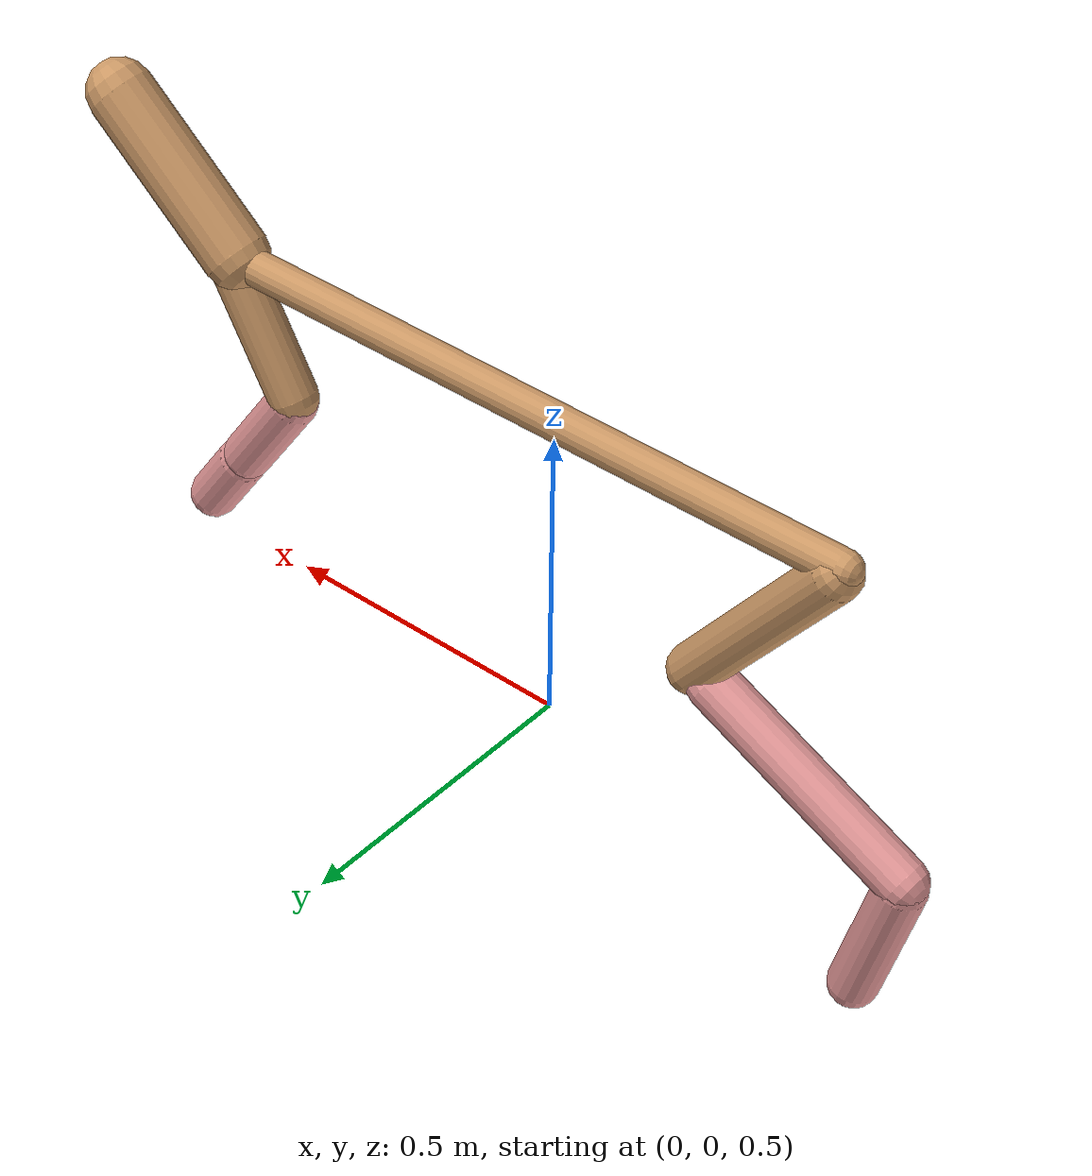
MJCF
<mujoco model="cheetah">
  <compiler angle="radian" coordinate="local" inertiafromgeom="true" settotalmass="14" />
  <default>
    <joint armature=".1" damping=".01" limited="true" solimplimit="0 .8 .03" solreflimit=".02 1" stiffness="8" />
    <geom conaffinity="0" condim="3" contype="1" friction="0.8 .1 .1" rgba="0.8 0.6 .4 1" solimp="0.0 0.8 0.01" solref="0.02 1" />
    <motor ctrllimited="true" ctrlrange="-1 1" />
  </default>
  <size nstack="300000" nuser_geom="1" />
  <option gravity="0 0 -9.81" timestep="0.01" />
  <worldbody>
    <body name="torso" pos="0.0 0.0 1.0336337367945316">
      <joint armature="0" axis="1 0 0" damping="0" limited="false" name="ignorex" pos="0 0 0" stiffness="0" type="slide" />
      <joint armature="0" axis="0 0 1" damping="0" limited="false" name="ignorez" pos="0 0 0" stiffness="0" type="slide" />
      <joint armature="0" axis="0 1 0" damping="0" limited="false" name="ignorey" pos="0 0 0" stiffness="0" type="hinge" />
      <geom fromto="-0.5 0.0 0.0 0.6305320836231432 0.0 0.0" name="torso" size="0.02897094864778782" type="capsule" />
      <geom axisangle="0 1 0 .87" name="head" pos="0.7305320836231431 0.0 0.1" size="0.052832595805098664 0.15" type="capsule" />

      <body name="bthigh" pos="-.5 0 0">
        <joint axis="0 1 0" damping="6" name="bthigh" pos="0 0 0" range="-.52 1.05" stiffness="240" type="hinge" />
        <geom axisangle="0 1 0 -3.8" name="bthigh" pos="0.12499653519354864 0.0 -0.16249549575161323" size="0.039394933036114965 0.1859973659620399" type="capsule" />
        <body name="bshin" pos="0.20999307038709727 0.0 -0.31499099150322646">
          <joint axis="0 1 0" damping="4.5" name="bshin" pos="0 0 0" range="-.785 .785" stiffness="180" type="hinge" />
          <geom axisangle="0 1 0 -2.03" name="bshin" pos="-0.17793361263016166 0.0 -0.08896680631508083" rgba="0.9 0.6 0.6 1" size="0.039394933036114965 0.192411068236593" type="capsule" />
          <body name="bfoot" pos="-0.3558672252603233 0.0 -0.17793361263016166">
            <joint axis="0 1 0" damping="3" name="bfoot" pos="0 0 0" range="-.4 .785" stiffness="120" type="hinge" />
            <geom axisangle="0 1 0 -.27" name="bfoot" pos="0.037852876923902226 0.0 -0.1223909687206172" rgba="0.9 0.6 0.6 1" size="0.039394933036114965 0.12057760276159829" type="capsule" />
            <inertial mass="10" />
          </body>
        </body>
      </body>
      <body name="fthigh" pos="0.6305320836231432 0.0 0.0">
        <joint axis="0 1 0" damping="4.5" name="fthigh" pos="0 0 0" range="-1.5 0.8" stiffness="180" type="hinge" />
        <geom axisangle="0 1 0 .52" name="fthigh" pos="-0.06195626404190835 0.0 -0.10621073835755716" size="0.03940422710199736 0.1170361212480412" type="capsule" />
        <body name="fshin" pos="-0.1239125280838167 0.0 -0.21242147671511433">
          <joint axis="0 1 0" damping="3" name="fshin" pos="0 0 0" range="-1.2 1.1" stiffness="120" type="hinge" />
          <geom axisangle="0 1 0 -.6" name="fshin" pos="0.05755075020698657 0.0 -0.07968565413275064" rgba="0.9 0.6 0.6 1" size="0.03940422710199736 0.09327690866385238" type="capsule" />
          <body name="ffoot" pos="0.11510150041397314 0.0 -0.15937130826550128">
            <joint axis="0 1 0" damping="1.5" name="ffoot" pos="0 0 0" range="-3.1 -0.3" stiffness="60" type="hinge" />
            <geom axisangle="0 1 0 -.6" name="ffoot" pos="0.040456532304247374 0.0 -0.06293238358438481" rgba="0.9 0.6 0.6 1" size="0.03940422710199736 0.061597958551600634" type="capsule" />
            <inertial mass="10" />
          </body>
        </body>
      </body>
    </body>
  </worldbody>
  <actuator>
    <motor gear="120" joint="bthigh" name="bthigh" />
    <motor gear="90" joint="bshin" name="bshin" />
    <motor gear="60" joint="bfoot" name="bfoot" />
    <motor gear="120" joint="fthigh" name="fthigh" />
    <motor gear="60" joint="fshin" name="fshin" />
    <motor gear="30" joint="ffoot" name="ffoot" />
  </actuator>
</mujoco>
